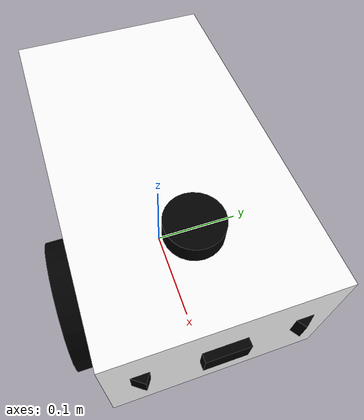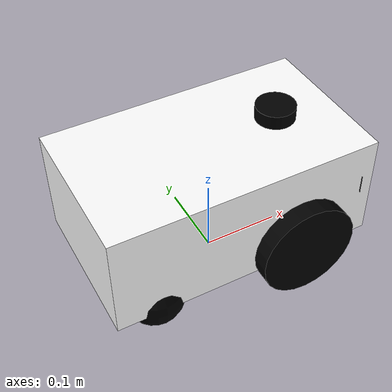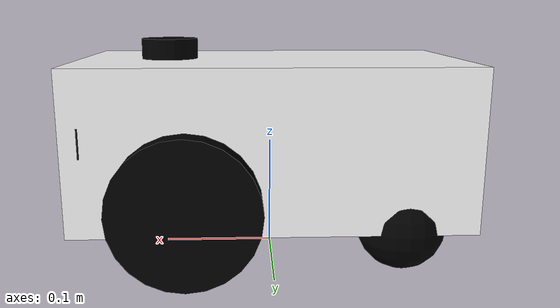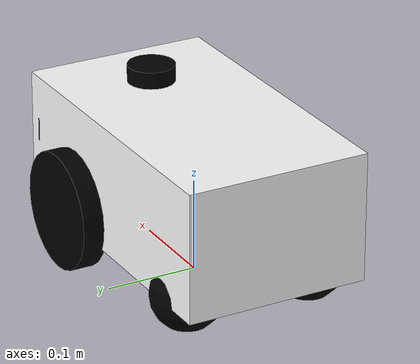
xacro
<?xml version="1.0"?>

<robot name="bumperbot" xmlns:xacro="http://ros.org/wiki/xacro">

    <material name="white">
            <color rgba="1 1 1 1"/>
    </material>

    <material name="red">
        <color rgba="1 0 0 1"/>
    </material>

    <material name="black">
        <color rgba="0 0 0 1"/>
    </material>

    <link name="base_footprint"/>

     <link name="base_link">
        <visual>
            <origin xyz="0 0 0" rpy="0 0 0"/>
            <geometry>
                <box size="0.345 0.2 0.14"/>
            </geometry>
            <material name="white"/>
        </visual>
        <collision>
            <origin xyz="0 0 0" rpy="0 0 0"/>
            <geometry>
                <box size="0.345 0.2 0.14"/>
            </geometry>
        </collision>
     </link>

     <joint name="base_joint" type="fixed">
        <parent link="base_footprint"/>
        <child link="base_link" />
        <origin xyz="0 0 0.1085" rpy="0 0 0"/>
     </joint>

      <link name="right_wheel_link">
        <visual>
            <origin xyz="0 0 0" rpy="1.57 0 0"/>
            <geometry>
                <cylinder length="0.0254" radius="0.0635"/>
            </geometry>
            <material name="black"/>
        </visual>
        <collision>
            <origin xyz="0 0 0" rpy="0 0 0"/>
            <geometry>
                <cylinder length="0.0254" radius="0.0635"/>
            </geometry>
        </collision>
      </link>

      <joint name="right_wheel_joint" type="continuous">
        <parent link="base_link"/>
        <child link="right_wheel_link" />
        <origin xyz="0.0725 -0.11 -0.045" rpy="0 0 0"/>
        <axis xyz="0 1 0" />
     </joint>

     <link name="left_wheel_link">
        <visual>
            <origin xyz="0 0 0" rpy="-1.57 0 0"/>
            <geometry>
                <cylinder length="0.0254" radius="0.0635"/>
            </geometry>
            <material name="black"/>
        </visual>
        <collision>
            <origin xyz="0 0 0" rpy="0 0 0"/>
            <geometry>
                <cylinder length="0.0254" radius="0.0635"/>
            </geometry>
        </collision>
      </link>

      <joint name="left_wheel_joint" type="continuous">
        <parent link="base_link"/>
        <child link="left_wheel_link" />
        <origin xyz="0.0725 0.11 -0.045" rpy="0 0 0"/>
        <axis xyz="0 1 0" />
     </joint>

     <link name="right_caster_link">
        <visual>
            <origin xyz="0 0 0" rpy="0 0 0"/>
            <geometry>
                <sphere radius="0.0385"/>
            </geometry>
            <material name="black"/>
        </visual>
        <collision>
            <origin xyz="0 0 0" rpy="0 0 0"/>
            <geometry>
                <sphere radius="0.0385"/>
            </geometry>
        </collision>
     </link>

     <joint name="right_caster_joint" type="fixed">
        <parent link="base_link"/>
        <child link="right_caster_link" />
        <origin xyz="-0.1125 -0.07 -0.07" rpy="0 0 0"/>
        <axis xyz="0 0 0" />
     </joint>

     <link name="left_caster_link">
        <visual>
            <origin xyz="0 0 0" rpy="0 0 0"/>
            <geometry>
                <sphere radius="0.0385"/>
            </geometry>
            <material name="black"/>
        </visual>
        <collision>
            <origin xyz="0 0 0" rpy="0 0 0"/>
            <geometry>
                <sphere radius="0.0385"/>
            </geometry>
        </collision>
     </link>

     <joint name="left_caster_joint" type="fixed">
        <parent link="base_link"/>
        <child link="left_caster_link" />
        <origin xyz="-0.1125 0.07 -0.07" rpy="0 0 0"/>
        <axis xyz="0 0 0" />
     </joint>

     <link name="laser">
        <visual>
            <origin xyz="0 0 0" rpy="0 0 0"/>
            <geometry>
                <cylinder length="0.0182" radius="0.0255"/>
            </geometry>
            <material name="black"/>
        </visual>
        <collision>
            <origin xyz="0 0 0" rpy="0 0 0"/>
            <geometry>
                <cylinder length="0.0182" radius="0.0255"/>
            </geometry>
        </collision>
     </link>

     <joint name="laser_joint" type="fixed">
        <parent link="base_link"/>
        <child link="laser" />
        <origin xyz="0.0925 0 0.0791" rpy="0 0 3.14"/>
        <axis xyz="0 0 0" />
     </joint>

     <link name="imu_frame">
        <visual>
            <origin xyz="0 0 0" rpy="0 0 0"/>
            <geometry>
                <box size="0.003 0.005 0.002"/>
            </geometry>
            <material name="red"/>
        </visual>
     </link>

     <joint name="imu_joint" type="fixed">
        <parent link="base_link"/>
        <child link="imu_frame" />
        <origin xyz="-0.0175 0.05 0.048" rpy="0 0 3.14"/>
        <axis xyz="0 0 0" />
     </joint>

     <link name="ranger_center_frame">
        <visual>
            <origin xyz="0 0 0" rpy="0 0 0"/>
            <geometry>
                <box size="0.015 0.04 0.025"/>
            </geometry>
            <material name="black"/>
        </visual>
     </link>

     <joint name="ranger_center_joint" type="fixed">
        <parent link="base_link"/>
        <child link="ranger_center_frame" />
        <origin xyz="0.1725 0 0.01" rpy="0 0 0"/>
        <axis xyz="0 0 0" />
     </joint>

     <link name="ranger_left_frame">
        <visual>
            <origin xyz="0 0 0" rpy="0 0 0"/>
            <geometry>
                <box size="0.015 0.04 0.025"/>
            </geometry>
            <material name="black"/>
        </visual>
     </link>

     <joint name="ranger_left_joint" type="fixed">
        <parent link="base_link"/>
        <child link="ranger_left_frame" />
        <origin xyz="0.1625 0.08 0.01" rpy="0 0 0.6106"/>
        <axis xyz="0 0 0" />
     </joint>

     <link name="ranger_right_frame">
        <visual>
            <origin xyz="0 0 0" rpy="0 0 0"/>
            <geometry>
                <box size="0.015 0.04 0.025"/>
            </geometry>
            <material name="black"/>
        </visual>
     </link>

     <joint name="ranger_right_joint" type="fixed">
        <parent link="base_link"/>
        <child link="ranger_right_frame" />
        <origin xyz="0.1625 -0.08 0.01" rpy="0 0 -0.6106"/>
        <axis xyz="0 0 0" />
     </joint>

</robot>
